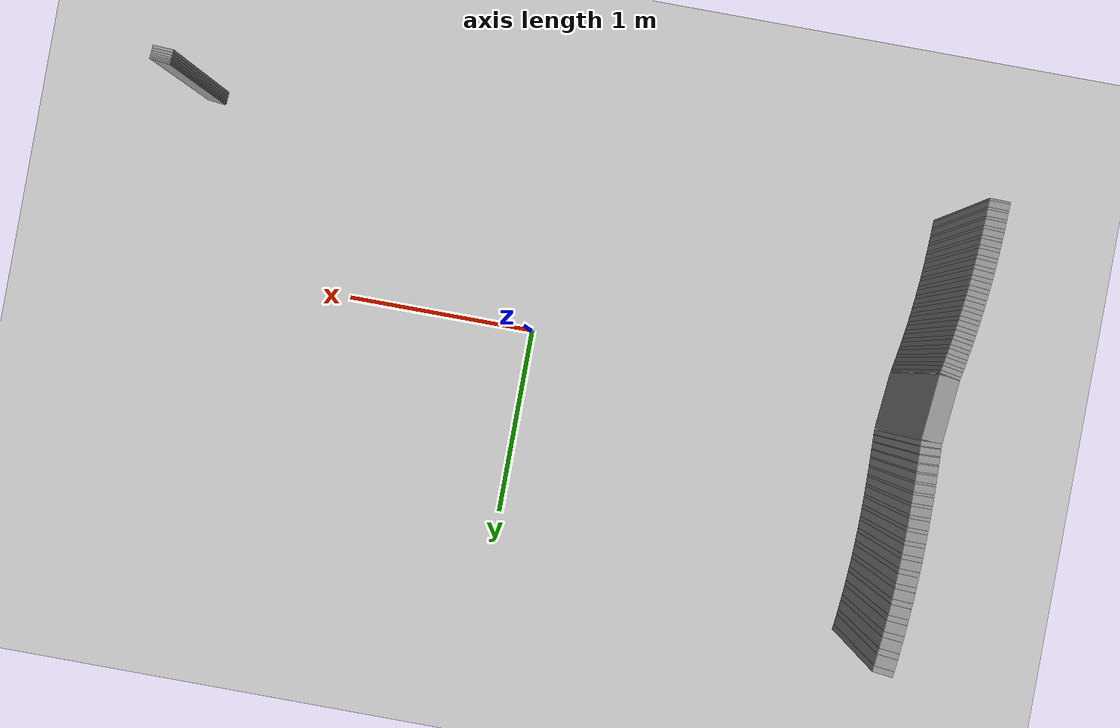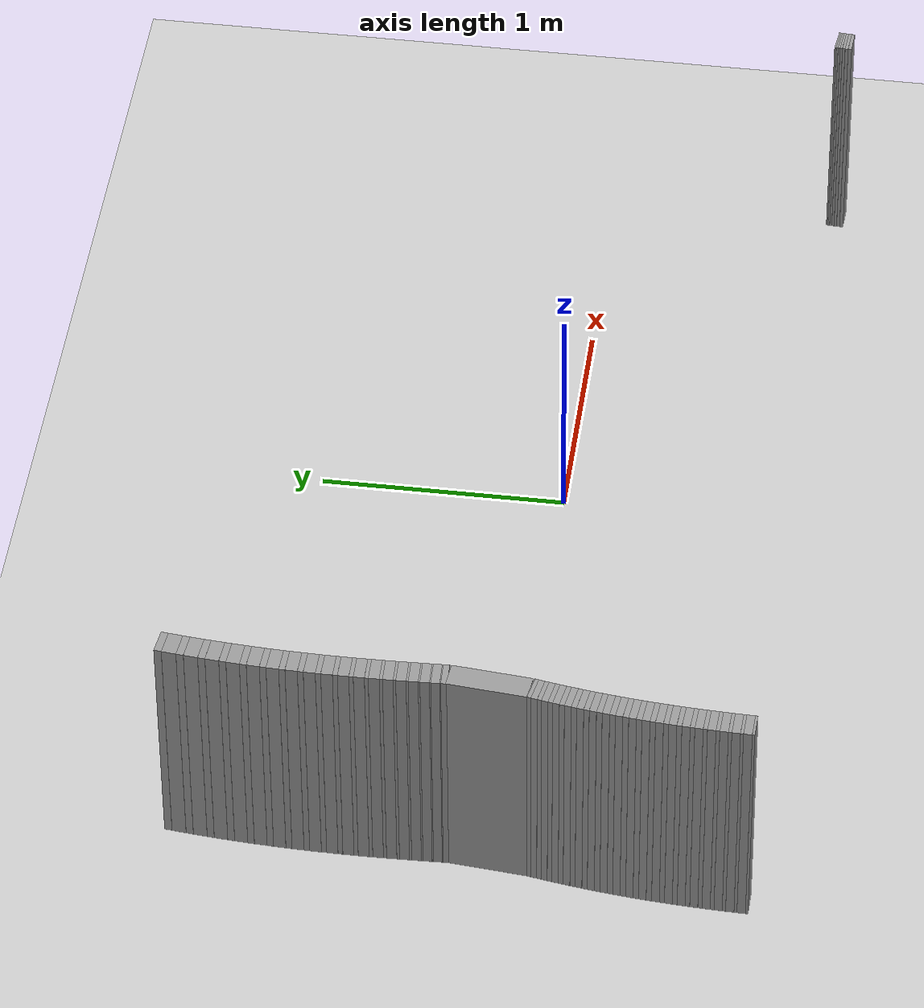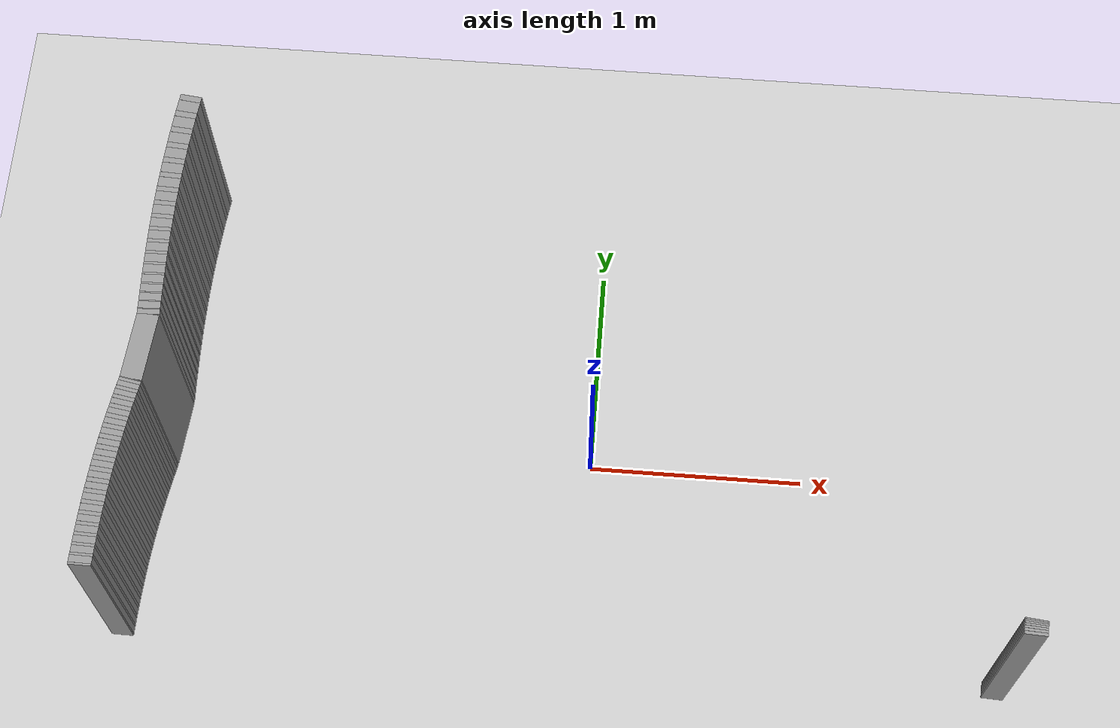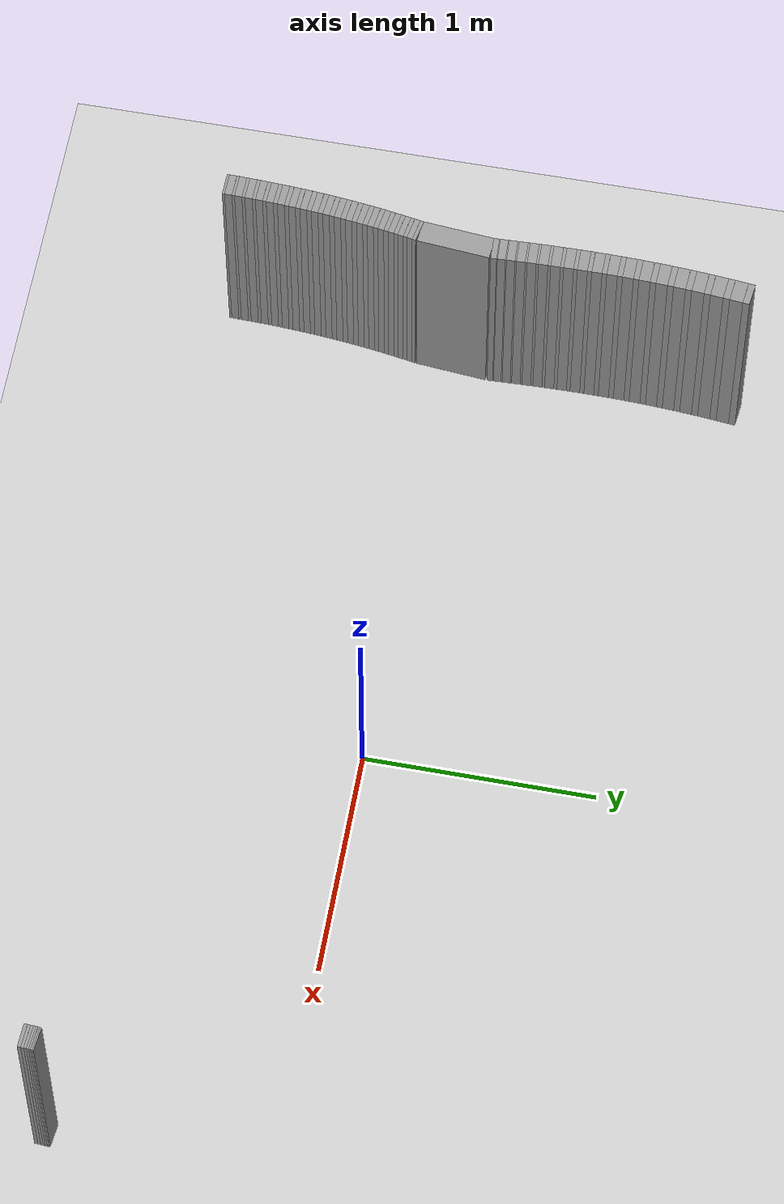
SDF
<sdf version="1.6">
 <world name="default">
  <include><uri>model://ground_plane</uri></include>
  <include><uri>model://sun</uri></include>
  <model name="wall_0_outward">
   <static>true</static>
   <link name="link">
    <collision name="collision">
     <geometry><box><size>0.02499235140936947 0.1 1.0</size></box></geometry>
    </collision>
    <visual name="visual">
     <geometry><box><size>0.02499235140936947 0.1 1.0</size></box></geometry>
     <material>
      <script><uri>file://media/materials/scripts/gazebo.material</uri><name>Gazebo/Gray</name></script>
     </material>
    </visual>
   </link>
   <pose>-1.9832578888008565 0.2062286704109643 0.5 0 0 1.6105311360931815</pose>
  </model>
  <model name="wall_1_outward">
   <static>true</static>
   <link name="link">
    <collision name="collision">
     <geometry><box><size>0.003562614089428086 0.1 1.0</size></box></geometry>
    </collision>
    <visual name="visual">
     <geometry><box><size>0.003562614089428086 0.1 1.0</size></box></geometry>
     <material>
      <script><uri>file://media/materials/scripts/gazebo.material</uri><name>Gazebo/Gray</name></script>
     </material>
    </visual>
   </link>
   <pose>-1.9838234672795898 0.22049494592302757 0.5 0 0 1.6096404824531443</pose>
  </model>
  <model name="wall_2_outward">
   <static>true</static>
   <link name="link">
    <collision name="collision">
     <geometry><box><size>0.03404314978064565 0.1 1.0</size></box></geometry>
    </collision>
    <visual name="visual">
     <geometry><box><size>0.03404314978064565 0.1 1.0</size></box></geometry>
     <material>
      <script><uri>file://media/materials/scripts/gazebo.material</uri><name>Gazebo/Gray</name></script>
     </material>
    </visual>
   </link>
   <pose>-1.9845385165392937 0.2392842260999491 0.5 0 0 1.6087498288129647</pose>
  </model>
  <model name="wall_3_outward">
   <static>true</static>
   <link name="link">
    <collision name="collision">
     <geometry><box><size>0.004864907696593289 0.1 1.0</size></box></geometry>
    </collision>
    <visual name="visual">
     <geometry><box><size>0.004864907696593289 0.1 1.0</size></box></geometry>
     <material>
      <script><uri>file://media/materials/scripts/gazebo.material</uri><name>Gazebo/Gray</name></script>
     </material>
    </visual>
   </link>
   <pose>-1.9852737314561468 0.2587243555219368 0.5 0 0 1.6075336015889483</pose>
  </model>
  <model name="wall_4_outward">
   <static>true</static>
   <link name="link">
    <collision name="collision">
     <geometry><box><size>0.03597833039452776 0.1 1.0</size></box></geometry>
    </collision>
    <visual name="visual">
     <geometry><box><size>0.03597833039452776 0.1 1.0</size></box></geometry>
     <material>
      <script><uri>file://media/materials/scripts/gazebo.material</uri><name>Gazebo/Gray</name></script>
     </material>
    </visual>
   </link>
   <pose>-1.9860019327087488 0.27913298562419453 0.5 0 0 1.6063173743649837</pose>
  </model>
  <model name="wall_5_outward">
   <static>true</static>
   <link name="link">
    <collision name="collision">
     <geometry><box><size>0.006405405531885531 0.1 1.0</size></box></geometry>
    </collision>
    <visual name="visual">
     <geometry><box><size>0.006405405531885531 0.1 1.0</size></box></geometry>
     <material>
      <script><uri>file://media/materials/scripts/gazebo.material</uri><name>Gazebo/Gray</name></script>
     </material>
    </visual>
   </link>
   <pose>-1.9867494062076563 0.3003116636612524 0.5 0 0 1.6047160222975967</pose>
  </model>
  <model name="wall_6_outward">
   <static>true</static>
   <link name="link">
    <collision name="collision">
     <geometry><box><size>0.0376008471394773 0.1 1.0</size></box></geometry>
    </collision>
    <visual name="visual">
     <geometry><box><size>0.0376008471394773 0.1 1.0</size></box></geometry>
     <material>
      <script><uri>file://media/materials/scripts/gazebo.material</uri><name>Gazebo/Gray</name></script>
     </material>
    </visual>
   </link>
   <pose>-1.9874655128608278 0.32230313031087576 0.5 0 0 1.6031146702302423</pose>
  </model>
  <model name="wall_7_outward">
   <static>true</static>
   <link name="link">
    <collision name="collision">
     <geometry><box><size>0.008167426659552243 0.1 1.0</size></box></geometry>
    </collision>
    <visual name="visual">
     <geometry><box><size>0.008167426659552243 0.1 1.0</size></box></geometry>
     <material>
      <script><uri>file://media/materials/scripts/gazebo.material</uri><name>Gazebo/Gray</name></script>
     </material>
    </visual>
   </link>
   <pose>-1.988196627239906 0.3451755782189848 0.5 0 0 1.6010728121465694</pose>
  </model>
  <model name="wall_8_outward">
   <static>true</static>
   <link name="link">
    <collision name="collision">
     <geometry><box><size>0.03897445016088282 0.1 1.0</size></box></geometry>
    </collision>
    <visual name="visual">
     <geometry><box><size>0.03897445016088282 0.1 1.0</size></box></geometry>
     <material>
      <script><uri>file://media/materials/scripts/gazebo.material</uri><name>Gazebo/Gray</name></script>
     </material>
    </visual>
   </link>
   <pose>-1.9888703902729943 0.3687368780373082 0.5 0 0 1.5990309540628436</pose>
  </model>
  <model name="wall_9_outward">
   <static>true</static>
   <link name="link">
    <collision name="collision">
     <geometry><box><size>0.010095114862784348 0.1 1.0</size></box></geometry>
    </collision>
    <visual name="visual">
     <geometry><box><size>0.010095114862784348 0.1 1.0</size></box></geometry>
     <material>
      <script><uri>file://media/materials/scripts/gazebo.material</uri><name>Gazebo/Gray</name></script>
     </material>
    </visual>
   </link>
   <pose>-1.9895502943814045 0.39326222526801957 0.5 0 0 1.5965071726679565</pose>
  </model>
  <model name="wall_10_outward">
   <static>true</static>
   <link name="link">
    <collision name="collision">
     <geometry><box><size>0.040168850836637154 0.1 1.0</size></box></geometry>
    </collision>
    <visual name="visual">
     <geometry><box><size>0.040168850836637154 0.1 1.0</size></box></geometry>
     <material>
      <script><uri>file://media/materials/scripts/gazebo.material</uri><name>Gazebo/Gray</name></script>
     </material>
    </visual>
   </link>
   <pose>-1.9901457141934884 0.41838714101884367 0.5 0 0 1.5939833912730634</pose>
  </model>
  <model name="wall_11_outward">
   <static>true</static>
   <link name="link">
    <collision name="collision">
     <geometry><box><size>0.012197037077132985 0.1 1.0</size></box></geometry>
    </collision>
    <visual name="visual">
     <geometry><box><size>0.012197037077132985 0.1 1.0</size></box></geometry>
     <material>
      <script><uri>file://media/materials/scripts/gazebo.material</uri><name>Gazebo/Gray</name></script>
     </material>
    </visual>
   </link>
   <pose>-1.9907341737812203 0.44456344959539373 0.5 0 0 1.5909341272784416</pose>
  </model>
  <model name="wall_12_outward">
   <static>true</static>
   <link name="link">
    <collision name="collision">
     <geometry><box><size>0.04125735677064901 0.1 1.0</size></box></geometry>
    </collision>
    <visual name="visual">
     <geometry><box><size>0.04125735677064901 0.1 1.0</size></box></geometry>
     <material>
      <script><uri>file://media/materials/scripts/gazebo.material</uri><name>Gazebo/Gray</name></script>
     </material>
    </visual>
   </link>
   <pose>-1.9912094729971852 0.47128639809166156 0.5 0 0 1.5878848632838043</pose>
  </model>
  <model name="wall_13_outward">
   <static>true</static>
   <link name="link">
    <collision name="collision">
     <geometry><box><size>0.014357418280432892 0.1 1.0</size></box></geometry>
    </collision>
    <visual name="visual">
     <geometry><box><size>0.014357418280432892 0.1 1.0</size></box></geometry>
     <material>
      <script><uri>file://media/materials/scripts/gazebo.material</uri><name>Gazebo/Gray</name></script>
     </material>
    </visual>
   </link>
   <pose>-1.9916588734661467 0.49909011964706607 0.5 0 0 1.5842955010064215</pose>
  </model>
  <model name="wall_14_outward">
   <static>true</static>
   <link name="link">
    <collision name="collision">
     <geometry><box><size>0.04230556347329919 0.1 1.0</size></box></geometry>
    </collision>
    <visual name="visual">
     <geometry><box><size>0.04230556347329919 0.1 1.0</size></box></geometry>
     <material>
      <script><uri>file://media/materials/scripts/gazebo.material</uri><name>Gazebo/Gray</name></script>
     </material>
    </visual>
   </link>
   <pose>-1.9919653938262685 0.5274199178146918 0.5 0 0 1.580706138729061</pose>
  </model>
  <model name="wall_15_outward">
   <static>true</static>
   <link name="link">
    <collision name="collision">
     <geometry><box><size>0.016498406599429822 0.1 1.0</size></box></geometry>
    </collision>
    <visual name="visual">
     <geometry><box><size>0.016498406599429822 0.1 1.0</size></box></geometry>
     <material>
      <script><uri>file://media/materials/scripts/gazebo.material</uri><name>Gazebo/Gray</name></script>
     </material>
    </visual>
   </link>
   <pose>-1.9922227334973337 0.556820726167788 0.5 0 0 1.5765815253842506</pose>
  </model>
  <model name="wall_16_outward">
   <static>true</static>
   <link name="link">
    <collision name="collision">
     <geometry><box><size>0.04337548366498124 0.1 1.0</size></box></geometry>
    </collision>
    <visual name="visual">
     <geometry><box><size>0.04337548366498124 0.1 1.0</size></box></geometry>
     <material>
      <script><uri>file://media/materials/scripts/gazebo.material</uri><name>Gazebo/Gray</name></script>
     </material>
    </visual>
   </link>
   <pose>-1.9923064708379452 0.5867575033536172 0.5 0 0 1.5724569120394554</pose>
  </model>
  <model name="wall_17_outward">
   <static>true</static>
   <link name="link">
    <collision name="collision">
     <geometry><box><size>0.018616051952543906 0.1 1.0</size></box></geometry>
    </collision>
    <visual name="visual">
     <geometry><box><size>0.018616051952543906 0.1 1.0</size></box></geometry>
     <material>
      <script><uri>file://media/materials/scripts/gazebo.material</uri><name>Gazebo/Gray</name></script>
     </material>
    </visual>
   </link>
   <pose>-1.992314622147501 0.6177531995567117 0.5 0 0 1.5678028822503105</pose>
  </model>
  <model name="wall_18_outward">
   <static>true</static>
   <link name="link">
    <collision name="collision">
     <geometry><box><size>0.044514878685963065 0.1 1.0</size></box></geometry>
    </collision>
    <visual name="visual">
     <geometry><box><size>0.044514878685963065 0.1 1.0</size></box></geometry>
     <material>
      <script><uri>file://media/materials/scripts/gazebo.material</uri><name>Gazebo/Gray</name></script>
     </material>
    </visual>
   </link>
   <pose>-1.9921165475925389 0.6493179723253822 0.5 0 0 1.5631488524611383</pose>
  </model>
  <model name="wall_19_outward">
   <static>true</static>
   <link name="link">
    <collision name="collision">
     <geometry><box><size>0.02053255308797264 0.1 1.0</size></box></geometry>
    </collision>
    <visual name="visual">
     <geometry><box><size>0.02053255308797264 0.1 1.0</size></box></geometry>
     <material>
      <script><uri>file://media/materials/scripts/gazebo.material</uri><name>Gazebo/Gray</name></script>
     </material>
    </visual>
   </link>
   <pose>-1.9918151300927371 0.6818401989058147 0.5 0 0 1.5580156916465986</pose>
  </model>
  <model name="wall_20_outward">
   <static>true</static>
   <link name="link">
    <collision name="collision">
     <geometry><box><size>0.04575715215424599 0.1 1.0</size></box></geometry>
    </collision>
    <visual name="visual">
     <geometry><box><size>0.04575715215424599 0.1 1.0</size></box></geometry>
     <material>
      <script><uri>file://media/materials/scripts/gazebo.material</uri><name>Gazebo/Gray</name></script>
     </material>
    </visual>
   </link>
   <pose>-1.991274103905816 0.7149805422516373 0.5 0 0 1.5528825308320766</pose>
  </model>
  <model name="wall_21_outward">
   <static>true</static>
   <link name="link">
    <collision name="collision">
     <geometry><box><size>0.02229397225560192 0.1 1.0</size></box></geometry>
    </collision>
    <visual name="visual">
     <geometry><box><size>0.02229397225560192 0.1 1.0</size></box></geometry>
     <material>
      <script><uri>file://media/materials/scripts/gazebo.material</uri><name>Gazebo/Gray</name></script>
     </material>
    </visual>
   </link>
   <pose>-1.9906024949461039 0.7489993591414924 0.5 0 0 1.547309008912097</pose>
  </model>
  <model name="wall_22_outward">
   <static>true</static>
   <link name="link">
    <collision name="collision">
     <geometry><box><size>0.04712011720145803 0.1 1.0</size></box></geometry>
    </collision>
    <visual name="visual">
     <geometry><box><size>0.04712011720145803 0.1 1.0</size></box></geometry>
     <material>
      <script><uri>file://media/materials/scripts/gazebo.material</uri><name>Gazebo/Gray</name></script>
     </material>
    </visual>
   </link>
   <pose>-1.989656127489414 0.7836933814546628 0.5 0 0 1.541735486992129</pose>
  </model>
  <model name="wall_23_outward">
   <static>true</static>
   <link name="link">
    <collision name="collision">
     <geometry><box><size>0.023861506493668753 0.1 1.0</size></box></geometry>
    </collision>
    <visual name="visual">
     <geometry><box><size>0.023861506493668753 0.1 1.0</size></box></geometry>
     <material>
      <script><uri>file://media/materials/scripts/gazebo.material</uri><name>Gazebo/Gray</name></script>
     </material>
    </visual>
   </link>
   <pose>-1.9885537446427641 0.8191669275814157 0.5 0 0 1.5357700749877792</pose>
  </model>
  <model name="wall_24_outward">
   <static>true</static>
   <link name="link">
    <collision name="collision">
     <geometry><box><size>0.04860556392496431 0.1 1.0</size></box></geometry>
    </collision>
    <visual name="visual">
     <geometry><box><size>0.04860556392496431 0.1 1.0</size></box></geometry>
     <material>
      <script><uri>file://media/materials/scripts/gazebo.material</uri><name>Gazebo/Gray</name></script>
     </material>
    </visual>
   </link>
   <pose>-1.9871400080176391 0.8553727296624517 0.5 0 0 1.5298046629834243</pose>
  </model>
  <model name="wall_25_outward">
   <static>true</static>
   <link name="link">
    <collision name="collision">
     <geometry><box><size>0.025216682645928676 0.1 1.0</size></box></geometry>
    </collision>
    <visual name="visual">
     <geometry><box><size>0.025216682645928676 0.1 1.0</size></box></geometry>
     <material>
      <script><uri>file://media/materials/scripts/gazebo.material</uri><name>Gazebo/Gray</name></script>
     </material>
    </visual>
   </link>
   <pose>-1.9855479752614955 0.8922493384537549 0.5 0 0 1.5235004505638725</pose>
  </model>
  <model name="wall_26_outward">
   <static>true</static>
   <link name="link">
    <collision name="collision">
     <geometry><box><size>0.05019961485562541 0.1 1.0</size></box></geometry>
    </collision>
    <visual name="visual">
     <geometry><box><size>0.05019961485562541 0.1 1.0</size></box></geometry>
     <material>
      <script><uri>file://media/materials/scripts/gazebo.material</uri><name>Gazebo/Gray</name></script>
     </material>
    </visual>
   </link>
   <pose>-1.9836071672016429 0.9299073411749801 0.5 0 0 1.5171962381443287</pose>
  </model>
  <model name="wall_27_outward">
   <static>true</static>
   <link name="link">
    <collision name="collision">
     <geometry><box><size>0.02635155146401303 0.1 1.0</size></box></geometry>
    </collision>
    <visual name="visual">
     <geometry><box><size>0.02635155146401303 0.1 1.0</size></box></geometry>
     <material>
      <script><uri>file://media/materials/scripts/gazebo.material</uri><name>Gazebo/Gray</name></script>
     </material>
    </visual>
   </link>
   <pose>-1.9814699142046015 0.968123019408103 0.5 0 0 1.5106083026247237</pose>
  </model>
  <model name="wall_28_outward">
   <static>true</static>
   <link name="link">
    <collision name="collision">
     <geometry><box><size>0.05187417307537208 0.1 1.0</size></box></geometry>
    </collision>
    <visual name="visual">
     <geometry><box><size>0.05187417307537208 0.1 1.0</size></box></geometry>
     <material>
      <script><uri>file://media/materials/scripts/gazebo.material</uri><name>Gazebo/Gray</name></script>
     </material>
    </visual>
   </link>
   <pose>-1.9789466820323227 1.0071542179870743 0.5 0 0 1.5040203671050933</pose>
  </model>
  <model name="wall_29_outward">
   <static>true</static>
   <link name="link">
    <collision name="collision">
     <geometry><box><size>0.027325228815458326 0.1 1.0</size></box></geometry>
    </collision>
    <visual name="visual">
     <geometry><box><size>0.027325228815458326 0.1 1.0</size></box></geometry>
     <material>
      <script><uri>file://media/materials/scripts/gazebo.material</uri><name>Gazebo/Gray</name></script>
     </material>
    </visual>
   </link>
   <pose>-1.9762112345015985 1.0466591177383084 0.5 0 0 1.497189006767617</pose>
  </model>
  <model name="wall_30_outward">
   <static>true</static>
   <link name="link">
    <collision name="collision">
     <geometry><box><size>0.05359155179388415 0.1 1.0</size></box></geometry>
    </collision>
    <visual name="visual">
     <geometry><box><size>0.05359155179388415 0.1 1.0</size></box></geometry>
     <material>
      <script><uri>file://media/materials/scripts/gazebo.material</uri><name>Gazebo/Gray</name></script>
     </material>
    </visual>
   </link>
   <pose>-1.9730533807398332 1.0869938697612034 0.5 0 0 1.4903576464301445</pose>
  </model>
  <model name="wall_31_outward">
   <static>true</static>
   <link name="link">
    <collision name="collision">
     <geometry><box><size>0.028176497649116766 0.1 1.0</size></box></geometry>
    </collision>
    <visual name="visual">
     <geometry><box><size>0.028176497649116766 0.1 1.0</size></box></geometry>
     <material>
      <script><uri>file://media/materials/scripts/gazebo.material</uri><name>Gazebo/Gray</name></script>
     </material>
    </visual>
   </link>
   <pose>-1.9696693786668225 1.1277373756910745 0.5 0 0 1.4833134637620153</pose>
  </model>
  <model name="wall_32_outward">
   <static>true</static>
   <link name="link">
    <collision name="collision">
     <geometry><box><size>0.05530453154715493 0.1 1.0</size></box></geometry>
    </collision>
    <visual name="visual">
     <geometry><box><size>0.05530453154715493 0.1 1.0</size></box></geometry>
     <material>
      <script><uri>file://media/materials/scripts/gazebo.material</uri><name>Gazebo/Gray</name></script>
     </material>
    </visual>
   </link>
   <pose>-1.965828473745341 1.1693005646642527 0.5 0 0 1.476269281093899</pose>
  </model>
  <model name="wall_33_outward">
   <static>true</static>
   <link name="link">
    <collision name="collision">
     <geometry><box><size>0.02890549046621725 0.1 1.0</size></box></geometry>
    </collision>
    <visual name="visual">
     <geometry><box><size>0.02890549046621725 0.1 1.0</size></box></geometry>
     <material>
      <script><uri>file://media/materials/scripts/gazebo.material</uri><name>Gazebo/Gray</name></script>
     </material>
    </visual>
   </link>
   <pose>-1.9617503969721624 1.2112073704535904 0.5 0 0 1.4690428455817852</pose>
  </model>
  <model name="wall_34_outward">
   <static>true</static>
   <link name="link">
    <collision name="collision">
     <geometry><box><size>0.056962782045419456 0.1 1.0</size></box></geometry>
    </collision>
    <visual name="visual">
     <geometry><box><size>0.056962782045419456 0.1 1.0</size></box></geometry>
     <material>
      <script><uri>file://media/materials/scripts/gazebo.material</uri><name>Gazebo/Gray</name></script>
     </material>
    </visual>
   </link>
   <pose>-1.9571845569615682 1.25389778700131 0.5 0 0 1.4618164100696658</pose>
  </model>
  <model name="wall_35_outward">
   <static>true</static>
   <link name="link">
    <collision name="collision">
     <geometry><box><size>0.02956355697005302 0.1 1.0</size></box></geometry>
    </collision>
    <visual name="visual">
     <geometry><box><size>0.02956355697005302 0.1 1.0</size></box></geometry>
     <material>
      <script><uri>file://media/materials/scripts/gazebo.material</uri><name>Gazebo/Gray</name></script>
     </material>
    </visual>
   </link>
   <pose>-1.9523705090394001 1.2968920166212237 0.5 0 0 1.454425453537305</pose>
  </model>
  <model name="wall_887_outward">
   <static>true</static>
   <link name="link">
    <collision name="collision">
     <geometry><box><size>0.009840904942848967 0.1 1.0</size></box></geometry>
    </collision>
    <visual name="visual">
     <geometry><box><size>0.009840904942848967 0.1 1.0</size></box></geometry>
     <material>
      <script><uri>file://media/materials/scripts/gazebo.material</uri><name>Gazebo/Gray</name></script>
     </material>
    </visual>
   </link>
   <pose>-2.097072741122383 -0.9784263705634699 0.5 0 0 1.5498188079885251</pose>
  </model>
  <model name="wall_888_outward">
   <static>true</static>
   <link name="link">
    <collision name="collision">
     <geometry><box><size>0.03259216972021074 0.1 1.0</size></box></geometry>
    </collision>
    <visual name="visual">
     <geometry><box><size>0.03259216972021074 0.1 1.0</size></box></geometry>
     <material>
      <script><uri>file://media/materials/scripts/gazebo.material</uri><name>Gazebo/Gray</name></script>
     </material>
    </visual>
   </link>
   <pose>-2.0965876212534873 -0.9572153915733138 0.5 0 0 1.5473585792709872</pose>
  </model>
  <model name="wall_889_outward">
   <static>true</static>
   <link name="link">
    <collision name="collision">
     <geometry><box><size>0.011432002993877529 0.1 1.0</size></box></geometry>
    </collision>
    <visual name="visual">
     <geometry><box><size>0.011432002993877529 0.1 1.0</size></box></geometry>
     <material>
      <script><uri>file://media/materials/scripts/gazebo.material</uri><name>Gazebo/Gray</name></script>
     </material>
    </visual>
   </link>
   <pose>-2.096055423461327 -0.9352097570574391 0.5 0 0 1.5445005746317058</pose>
  </model>
  <model name="wall_890_outward">
   <static>true</static>
   <link name="link">
    <collision name="collision">
     <geometry><box><size>0.03225670446615653 0.1 1.0</size></box></geometry>
    </collision>
    <visual name="visual">
     <geometry><box><size>0.03225670446615653 0.1 1.0</size></box></geometry>
     <material>
      <script><uri>file://media/materials/scripts/gazebo.material</uri><name>Gazebo/Gray</name></script>
     </material>
    </visual>
   </link>
   <pose>-2.095434998769913 -0.9133742330183419 0.5 0 0 1.5416425699924658</pose>
  </model>
  <model name="wall_891_outward">
   <static>true</static>
   <link name="link">
    <collision name="collision">
     <geometry><box><size>0.013027460742289299 0.1 1.0</size></box></geometry>
    </collision>
    <visual name="visual">
     <geometry><box><size>0.013027460742289299 0.1 1.0</size></box></geometry>
     <material>
      <script><uri>file://media/materials/scripts/gazebo.material</uri><name>Gazebo/Gray</name></script>
     </material>
    </visual>
   </link>
   <pose>-2.094753786184352 -0.890742424877528 0.5 0 0 1.5383856990492042</pose>
  </model>
  <model name="wall_892_outward">
   <static>true</static>
   <link name="link">
    <collision name="collision">
     <geometry><box><size>0.03191694411812578 0.1 1.0</size></box></geometry>
    </collision>
    <visual name="visual">
     <geometry><box><size>0.03191694411812578 0.1 1.0</size></box></geometry>
     <material>
      <script><uri>file://media/materials/scripts/gazebo.material</uri><name>Gazebo/Gray</name></script>
     </material>
    </visual>
   </link>
   <pose>-2.093973630950264 -0.8682837931902396 0.5 0 0 1.535128828105886</pose>
  </model>
  <model name="wall_893_outward">
   <static>true</static>
   <link name="link">
    <collision name="collision">
     <geometry><box><size>0.0146402028338717 0.1 1.0</size></box></geometry>
    </collision>
    <visual name="visual">
     <geometry><box><size>0.0146402028338717 0.1 1.0</size></box></geometry>
     <material>
      <script><uri>file://media/materials/scripts/gazebo.material</uri><name>Gazebo/Gray</name></script>
     </material>
    </visual>
   </link>
   <pose>-2.0931167453410633 -0.8450210296992156 0.5 0 0 1.531468769225733</pose>
  </model>
  <model name="wall_894_outward">
   <static>true</static>
   <link name="link">
    <collision name="collision">
     <geometry><box><size>0.03156588317921509 0.1 1.0</size></box></geometry>
    </collision>
    <visual name="visual">
     <geometry><box><size>0.03156588317921509 0.1 1.0</size></box></geometry>
     <material>
      <script><uri>file://media/materials/scripts/gazebo.material</uri><name>Gazebo/Gray</name></script>
     </material>
    </visual>
   </link>
   <pose>-2.0921506757374173 -0.8219382274862095 0.5 0 0 1.527808710345547</pose>
  </model>
  <model name="wall_895_outward">
   <static>true</static>
   <link name="link">
    <collision name="collision">
     <geometry><box><size>0.016220750488740096 0.1 1.0</size></box></geometry>
    </collision>
    <visual name="visual">
     <geometry><box><size>0.016220750488740096 0.1 1.0</size></box></geometry>
     <material>
      <script><uri>file://media/materials/scripts/gazebo.material</uri><name>Gazebo/Gray</name></script>
     </material>
    </visual>
   </link>
   <pose>-2.091091019465549 -0.7980684639157013 0.5 0 0 1.5237535116090077</pose>
  </model>
  <model name="wall_896_outward">
   <static>true</static>
   <link name="link">
    <collision name="collision">
     <geometry><box><size>0.031199437089340636 0.1 1.0</size></box></geometry>
    </collision>
    <visual name="visual">
     <geometry><box><size>0.031199437089340636 0.1 1.0</size></box></geometry>
     <material>
      <script><uri>file://media/materials/scripts/gazebo.material</uri><name>Gazebo/Gray</name></script>
     </material>
    </visual>
   </link>
   <pose>-2.089912857488723 -0.7743877037658262 0.5 0 0 1.5196983128724357</pose>
  </model>
  <model name="wall_897_outward">
   <static>true</static>
   <link name="link">
    <collision name="collision">
     <geometry><box><size>0.017630990267561084 0.1 1.0</size></box></geometry>
    </collision>
    <visual name="visual">
     <geometry><box><size>0.017630990267561084 0.1 1.0</size></box></geometry>
     <material>
      <script><uri>file://media/materials/scripts/gazebo.material</uri><name>Gazebo/Gray</name></script>
     </material>
    </visual>
   </link>
   <pose>-2.088627030004152 -0.7500064274482359 0.5 0 0 1.515290551032969</pose>
  </model>
  <model name="wall_898_outward">
   <static>true</static>
   <link name="link">
    <collision name="collision">
     <geometry><box><size>0.030815339296765457 0.1 1.0</size></box></geometry>
    </collision>
    <visual name="visual">
     <geometry><box><size>0.030815339296765457 0.1 1.0</size></box></geometry>
     <material>
      <script><uri>file://media/materials/scripts/gazebo.material</uri><name>Gazebo/Gray</name></script>
     </material>
    </visual>
   </link>
   <pose>-2.0872153945092777 -0.7258244846309996 0.5 0 0 1.510882789193498</pose>
  </model>
  <model name="wall_899_outward">
   <static>true</static>
   <link name="link">
    <collision name="collision">
     <geometry><box><size>0.01896083086820309 0.1 1.0</size></box></geometry>
    </collision>
    <visual name="visual">
     <geometry><box><size>0.01896083086820309 0.1 1.0</size></box></geometry>
     <material>
      <script><uri>file://media/materials/scripts/gazebo.material</uri><name>Gazebo/Gray</name></script>
     </material>
    </visual>
   </link>
   <pose>-2.085680301103604 -0.7009838528931491 0.5 0 0 1.5061425637245223</pose>
  </model>
  <model name="wall_900_outward">
   <static>true</static>
   <link name="link">
    <collision name="collision">
     <geometry><box><size>0.030413788833832042 0.1 1.0</size></box></geometry>
    </collision>
    <visual name="visual">
     <geometry><box><size>0.030413788833832042 0.1 1.0</size></box></geometry>
     <material>
      <script><uri>file://media/materials/scripts/gazebo.material</uri><name>Gazebo/Gray</name></script>
     </material>
    </visual>
   </link>
   <pose>-2.084013363193719 -0.6763529506303216 0.5 0 0 1.5014023382555433</pose>
  </model>
  <model name="wall_901_outward">
   <static>true</static>
   <link name="link">
    <collision name="collision">
     <geometry><box><size>0.020089768718393707 0.1 1.0</size></box></geometry>
    </collision>
    <visual name="visual">
     <geometry><box><size>0.020089768718393707 0.1 1.0</size></box></geometry>
     <material>
      <script><uri>file://media/materials/scripts/gazebo.material</uri><name>Gazebo/Gray</name></script>
     </material>
    </visual>
   </link>
   <pose>-2.082212127956002 -0.6511655722473546 0.5 0 0 1.496379874960596</pose>
  </model>
  <model name="wall_902_outward">
   <static>true</static>
   <link name="link">
    <collision name="collision">
     <geometry><box><size>0.02999359780357638 0.1 1.0</size></box></geometry>
    </collision>
    <visual name="visual">
     <geometry><box><size>0.02999359780357638 0.1 1.0</size></box></geometry>
     <material>
      <script><uri>file://media/materials/scripts/gazebo.material</uri><name>Gazebo/Gray</name></script>
     </material>
    </visual>
   </link>
   <pose>-2.0802752361932684 -0.6261989835555009 0.5 0 0 1.4913574116656423</pose>
  </model>
  <model name="wall_903_outward">
   <static>true</static>
   <link name="link">
    <collision name="collision">
     <geometry><box><size>0.02099426042596909 0.1 1.0</size></box></geometry>
    </collision>
    <visual name="visual">
     <geometry><box><size>0.02099426042596909 0.1 1.0</size></box></geometry>
     <material>
      <script><uri>file://media/materials/scripts/gazebo.material</uri><name>Gazebo/Gray</name></script>
     </material>
    </visual>
   </link>
   <pose>-2.078197245828754 -0.6007899685979204 0.5 0 0 1.4861088224614176</pose>
  </model>
  <model name="wall_904_outward">
   <static>true</static>
   <link name="link">
    <collision name="collision">
     <geometry><box><size>0.02955576596896177 0.1 1.0</size></box></geometry>
    </collision>
    <visual name="visual">
     <geometry><box><size>0.02955576596896177 0.1 1.0</size></box></geometry>
     <material>
      <script><uri>file://media/materials/scripts/gazebo.material</uri><name>Gazebo/Gray</name></script>
     </material>
    </visual>
   </link>
   <pose>-2.0759820582056037 -0.5756123006639967 0.5 0 0 1.4808602332572192</pose>
  </model>
  <model name="wall_905_outward">
   <static>true</static>
   <link name="link">
    <collision name="collision">
     <geometry><box><size>0.021611652569885637 0.1 1.0</size></box></geometry>
    </collision>
    <visual name="visual">
     <geometry><box><size>0.021611652569885637 0.1 1.0</size></box></geometry>
     <material>
      <script><uri>file://media/materials/scripts/gazebo.material</uri><name>Gazebo/Gray</name></script>
     </material>
    </visual>
   </link>
   <pose>-2.0736261270661682 -0.5501373893411015 0.5 0 0 1.4754572938278998</pose>
  </model>
  <model name="wall_906_outward">
   <static>true</static>
   <link name="link">
    <collision name="collision">
     <geometry><box><size>0.02910154777775548 0.1 1.0</size></box></geometry>
    </collision>
    <visual name="visual">
     <geometry><box><size>0.02910154777775548 0.1 1.0</size></box></geometry>
     <material>
      <script><uri>file://media/materials/scripts/gazebo.material</uri><name>Gazebo/Gray</name></script>
     </material>
    </visual>
   </link>
   <pose>-2.071134074619396 -0.5249036370026634 0.5 0 0 1.4700543543985831</pose>
  </model>
  <model name="wall_907_outward">
   <static>true</static>
   <link name="link">
    <collision name="collision">
     <geometry><box><size>0.021999830182338812 0.1 1.0</size></box></geometry>
    </collision>
    <visual name="visual">
     <geometry><box><size>0.021999830182338812 0.1 1.0</size></box></geometry>
     <material>
      <script><uri>file://media/materials/scripts/gazebo.material</uri><name>Gazebo/Gray</name></script>
     </material>
    </visual>
   </link>
   <pose>-2.068504223956975 -0.4994887446921703 0.5 0 0 1.4645543691241096</pose>
  </model>
  <model name="wall_908_outward">
   <static>true</static>
   <link name="link">
    <collision name="collision">
     <geometry><box><size>0.028631056613163352 0.1 1.0</size></box></geometry>
    </collision>
    <visual name="visual">
     <geometry><box><size>0.028631056613163352 0.1 1.0</size></box></geometry>
     <material>
      <script><uri>file://media/materials/scripts/gazebo.material</uri><name>Gazebo/Gray</name></script>
     </material>
    </visual>
   </link>
   <pose>-2.065741450608062 -0.47432460364921963 0.5 0 0 1.4590543838496155</pose>
  </model>
  <model name="wall_909_outward">
   <static>true</static>
   <link name="link">
    <collision name="collision">
     <geometry><box><size>0.0220749530632992 0.1 1.0</size></box></geometry>
    </collision>
    <visual name="visual">
     <geometry><box><size>0.0220749530632992 0.1 1.0</size></box></geometry>
     <material>
      <script><uri>file://media/materials/scripts/gazebo.material</uri><name>Gazebo/Gray</name></script>
     </material>
    </visual>
   </link>
   <pose>-2.0628538341831857 -0.449136675720778 0.5 0 0 1.4535356175698524</pose>
  </model>
  <model name="wall_910_outward">
   <static>true</static>
   <link name="link">
    <collision name="collision">
     <geometry><box><size>0.02814453828865492 0.1 1.0</size></box></geometry>
    </collision>
    <visual name="visual">
     <geometry><box><size>0.02814453828865492 0.1 1.0</size></box></geometry>
     <material>
      <script><uri>file://media/materials/scripts/gazebo.material</uri><name>Gazebo/Gray</name></script>
     </material>
    </visual>
   </link>
   <pose>-2.0598390877609765 -0.4242086613330357 0.5 0 0 1.4480168512901017</pose>
  </model>
  <model name="wall_911_outward">
   <static>true</static>
   <link name="link">
    <collision name="collision">
     <geometry><box><size>0.02185788672998376 0.1 1.0</size></box></geometry>
    </collision>
    <visual name="visual">
     <geometry><box><size>0.02185788672998376 0.1 1.0</size></box></geometry>
     <material>
      <script><uri>file://media/materials/scripts/gazebo.material</uri><name>Gazebo/Gray</name></script>
     </material>
    </visual>
   </link>
   <pose>-2.056717907205944 -0.3994031323837116 0.5 0 0 1.442552352411981</pose>
  </model>
  <model name="wall_912_outward">
   <static>true</static>
   <link name="link">
    <collision name="collision">
     <geometry><box><size>0.027639891863017522 0.1 1.0</size></box></geometry>
    </collision>
    <visual name="visual">
     <geometry><box><size>0.027639891863017522 0.1 1.0</size></box></geometry>
     <material>
      <script><uri>file://media/materials/scripts/gazebo.material</uri><name>Gazebo/Gray</name></script>
     </material>
    </visual>
   </link>
   <pose>-2.053477831896723 -0.3748673437613276 0.5 0 0 1.4370878535338394</pose>
  </model>
  <model name="wall_913_outward">
   <static>true</static>
   <link name="link">
    <collision name="collision">
     <geometry><box><size>0.021341569238155902 0.1 1.0</size></box></geometry>
    </collision>
    <visual name="visual">
     <geometry><box><size>0.021341569238155902 0.1 1.0</size></box></geometry>
     <material>
      <script><uri>file://media/materials/scripts/gazebo.material</uri><name>Gazebo/Gray</name></script>
     </material>
    </visual>
   </link>
   <pose>-2.050156557822598 -0.35060294961138094 0.5 0 0 1.4317524359107372</pose>
  </model>
  <model name="wall_914_outward">
   <static>true</static>
   <link name="link">
    <collision name="collision">
     <geometry><box><size>0.027114491549010643 0.1 1.0</size></box></geometry>
    </collision>
    <visual name="visual">
     <geometry><box><size>0.027114491549010643 0.1 1.0</size></box></geometry>
     <material>
      <script><uri>file://media/materials/scripts/gazebo.material</uri><name>Gazebo/Gray</name></script>
     </material>
    </visual>
   </link>
   <pose>-2.04672703414938 -0.3266189610781262 0.5 0 0 1.4264170182876357</pose>
  </model>
  <model name="wall_915_outward">
   <static>true</static>
   <link name="link">
    <collision name="collision">
     <geometry><box><size>0.020541687350909745 0.1 1.0</size></box></geometry>
    </collision>
    <visual name="visual">
     <geometry><box><size>0.020541687350909745 0.1 1.0</size></box></geometry>
     <material>
      <script><uri>file://media/materials/scripts/gazebo.material</uri><name>Gazebo/Gray</name></script>
     </material>
    </visual>
   </link>
   <pose>-2.043246514120616 -0.30304651625560536 0.5 0 0 1.421281573877258</pose>
  </model>
  <model name="wall_916_outward">
   <static>true</static>
   <link name="link">
    <collision name="collision">
     <geometry><box><size>0.02656320972086501 0.1 1.0</size></box></geometry>
    </collision>
    <visual name="visual">
     <geometry><box><size>0.02656320972086501 0.1 1.0</size></box></geometry>
     <material>
      <script><uri>file://media/materials/scripts/gazebo.material</uri><name>Gazebo/Gray</name></script>
     </material>
    </visual>
   </link>
   <pose>-2.0396707614278764 -0.279767164307473 0.5 0 0 1.4161461294669109</pose>
  </model>
  <model name="wall_917_outward">
   <static>true</static>
   <link name="link">
    <collision name="collision">
     <geometry><box><size>0.01943589322740127 0.1 1.0</size></box></geometry>
    </collision>
    <visual name="visual">
     <geometry><box><size>0.01943589322740127 0.1 1.0</size></box></geometry>
     <material>
      <script><uri>file://media/materials/scripts/gazebo.material</uri><name>Gazebo/Gray</name></script>
     </material>
    </visual>
   </link>
   <pose>-2.0360813994252505 -0.2570494883454543 0.5 0 0 1.4112871370400755</pose>
  </model>
  <model name="wall_918_outward">
   <static>true</static>
   <link name="link">
    <collision name="collision">
     <geometry><box><size>0.025979118189053966 0.1 1.0</size></box></geometry>
    </collision>
    <visual name="visual">
     <geometry><box><size>0.025979118189053966 0.1 1.0</size></box></geometry>
     <material>
      <script><uri>file://media/materials/scripts/gazebo.material</uri><name>Gazebo/Gray</name></script>
     </material>
    </visual>
   </link>
   <pose>-2.0324123931665783 -0.23464042258493217 0.5 0 0 1.406428144613305</pose>
  </model>
  <model name="wall_919_outward">
   <static>true</static>
   <link name="link">
    <collision name="collision">
     <geometry><box><size>0.018168080738129408 0.1 1.0</size></box></geometry>
    </collision>
    <visual name="visual">
     <geometry><box><size>0.018168080738129408 0.1 1.0</size></box></geometry>
     <material>
      <script><uri>file://media/materials/scripts/gazebo.material</uri><name>Gazebo/Gray</name></script>
     </material>
    </visual>
   </link>
   <pose>-2.0287598223424013 -0.2128711762646072 0.5 0 0 1.4018861088116767</pose>
  </model>
  <model name="wall_920_outward">
   <static>true</static>
   <link name="link">
    <collision name="collision">
     <geometry><box><size>0.025350372340683852 0.1 1.0</size></box></geometry>
    </collision>
    <visual name="visual">
     <geometry><box><size>0.025350372340683852 0.1 1.0</size></box></geometry>
     <material>
      <script><uri>file://media/materials/scripts/gazebo.material</uri><name>Gazebo/Gray</name></script>
     </material>
    </visual>
   </link>
   <pose>-2.02504518879776 -0.19143142202537677 0.5 0 0 1.3973440730100508</pose>
  </model>
  <model name="wall_921_outward">
   <static>true</static>
   <link name="link">
    <collision name="collision">
     <geometry><box><size>0.016674062064264694 0.1 1.0</size></box></geometry>
    </collision>
    <visual name="visual">
     <geometry><box><size>0.016674062064264694 0.1 1.0</size></box></geometry>
     <material>
      <script><uri>file://media/materials/scripts/gazebo.material</uri><name>Gazebo/Gray</name></script>
     </material>
    </visual>
   </link>
   <pose>-2.0213846009585748 -0.17074056577941363 0.5 0 0 1.3931755454215022</pose>
  </model>
  <model name="wall_922_outward">
   <static>true</static>
   <link name="link">
    <collision name="collision">
     <geometry><box><size>0.024665033860288385 0.1 1.0</size></box></geometry>
    </collision>
    <visual name="visual">
     <geometry><box><size>0.024665033860288385 0.1 1.0</size></box></geometry>
     <material>
      <script><uri>file://media/materials/scripts/gazebo.material</uri><name>Gazebo/Gray</name></script>
     </material>
    </visual>
   </link>
   <pose>-2.017681953338266 -0.1504054034500283 0.5 0 0 1.3890070178329816</pose>
  </model>
  <model name="wall_923_outward">
   <static>true</static>
   <link name="link">
    <collision name="collision">
     <geometry><box><size>0.015022074473507523 0.1 1.0</size></box></geometry>
    </collision>
    <visual name="visual">
     <geometry><box><size>0.015022074473507523 0.1 1.0</size></box></geometry>
     <material>
      <script><uri>file://media/materials/scripts/gazebo.material</uri><name>Gazebo/Gray</name></script>
     </material>
    </visual>
   </link>
   <pose>-2.0140667099576017 -0.13089398753978396 0.5 0 0 1.3852514903866096</pose>
  </model>
  <model name="wall_924_outward">
   <static>true</static>
   <link name="link">
    <collision name="collision">
     <geometry><box><size>0.002263514535975152 0.1 1.0</size></box></geometry>
    </collision>
    <visual name="visual">
     <geometry><box><size>0.002263514535975152 0.1 1.0</size></box></geometry>
     <material>
      <script><uri>file://media/materials/scripts/gazebo.material</uri><name>Gazebo/Gray</name></script>
     </material>
    </visual>
   </link>
   <pose>-2.0124680936373194 -0.12240033091742711 0.5 0 0 1.3814959629401529</pose>
  </model>
  <model name="wall_925_outward">
   <static>true</static>
   <link name="link">
    <collision name="collision">
     <geometry><box><size>0.31640875473763763 0.1 1.0</size></box></geometry>
    </collision>
    <visual name="visual">
     <geometry><box><size>0.31640875473763763 0.1 1.0</size></box></geometry>
     <material>
      <script><uri>file://media/materials/scripts/gazebo.material</uri><name>Gazebo/Gray</name></script>
     </material>
    </visual>
   </link>
   <pose>-1.9975083075612061 0.03622678350818651 0.5 0 0 1.4774470730359928</pose>
  </model>
  <model name="wall_372_inward">
   <static>true</static>
   <link name="link">
    <collision name="collision">
     <geometry><box><size>0.01427341438860583 0.1 1.0</size></box></geometry>
    </collision>
    <visual name="visual">
     <geometry><box><size>0.01427341438860583 0.1 1.0</size></box></geometry>
     <material>
      <script><uri>file://media/materials/scripts/gazebo.material</uri><name>Gazebo/Gray</name></script>
     </material>
    </visual>
   </link>
   <pose>1.9048482568267169 -0.9790429354567309 0.5 0 0 1.5196983128724466</pose>
  </model>
  <model name="wall_373_inward">
   <static>true</static>
   <link name="link">
    <collision name="collision">
     <geometry><box><size>0.012519236580652229 0.1 1.0</size></box></geometry>
    </collision>
    <visual name="visual">
     <geometry><box><size>0.012519236580652229 0.1 1.0</size></box></geometry>
     <material>
      <script><uri>file://media/materials/scripts/gazebo.material</uri><name>Gazebo/Gray</name></script>
     </material>
    </visual>
   </link>
   <pose>1.905587581260285 -0.9656671564440398 0.5 0 0 1.5108827891934875</pose>
  </model>
  <model name="wall_374_inward">
   <static>true</static>
   <link name="link">
    <collision name="collision">
     <geometry><box><size>0.010888255835190628 0.1 1.0</size></box></geometry>
    </collision>
    <visual name="visual">
     <geometry><box><size>0.010888255835190628 0.1 1.0</size></box></geometry>
     <material>
      <script><uri>file://media/materials/scripts/gazebo.material</uri><name>Gazebo/Gray</name></script>
     </material>
    </visual>
   </link>
   <pose>1.9063398794168434 -0.9539877446482115 0.5 0 0 1.5014023382555433</pose>
  </model>
  <model name="wall_375_inward">
   <static>true</static>
   <link name="link">
    <collision name="collision">
     <geometry><box><size>0.009451311950761206 0.1 1.0</size></box></geometry>
    </collision>
    <visual name="visual">
     <geometry><box><size>0.009451311950761206 0.1 1.0</size></box></geometry>
     <material>
      <script><uri>file://media/materials/scripts/gazebo.material</uri><name>Gazebo/Gray</name></script>
     </material>
    </visual>
   </link>
   <pose>1.9070923723087434 -0.9438459665485283 0.5 0 0 1.4913574116656403</pose>
  </model>
  <model name="wall_376_inward">
   <static>true</static>
   <link name="link">
    <collision name="collision">
     <geometry><box><size>0.008252507161138336 0.1 1.0</size></box></geometry>
    </collision>
    <visual name="visual">
     <geometry><box><size>0.008252507161138336 0.1 1.0</size></box></geometry>
     <material>
      <script><uri>file://media/materials/scripts/gazebo.material</uri><name>Gazebo/Gray</name></script>
     </material>
    </visual>
   </link>
   <pose>1.9078379776443575 -0.9350256362342861 0.5 0 0 1.4808602332572132</pose>
  </model>
  <model name="wall_377_inward">
   <static>true</static>
   <link name="link">
    <collision name="collision">
     <geometry><box><size>0.007295482304252767 0.1 1.0</size></box></geometry>
    </collision>
    <visual name="visual">
     <geometry><box><size>0.007295482304252767 0.1 1.0</size></box></geometry>
     <material>
      <script><uri>file://media/materials/scripts/gazebo.material</uri><name>Gazebo/Gray</name></script>
     </material>
    </visual>
   </link>
   <pose>1.9085754360656901 -0.9272868125718337 0.5 0 0 1.4700543543985893</pose>
  </model>
  <model name="wall_378_inward">
   <static>true</static>
   <link name="link">
    <collision name="collision">
     <geometry><box><size>0.006593330530283003 0.1 1.0</size></box></geometry>
    </collision>
    <visual name="visual">
     <geometry><box><size>0.006593330530283003 0.1 1.0</size></box></geometry>
     <material>
      <script><uri>file://media/materials/scripts/gazebo.material</uri><name>Gazebo/Gray</name></script>
     </material>
    </visual>
   </link>
   <pose>1.9093099050837135 -0.9203814609731784 0.5 0 0 1.4590543838496062</pose>
  </model>
 </world>
</sdf>
